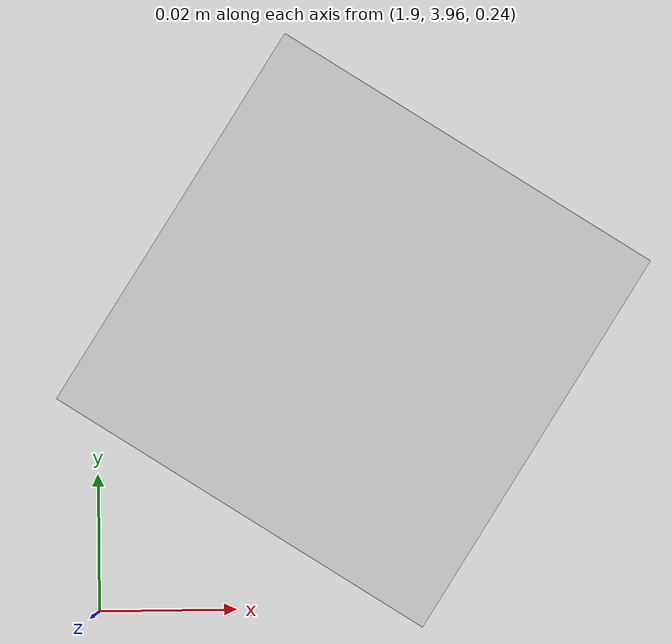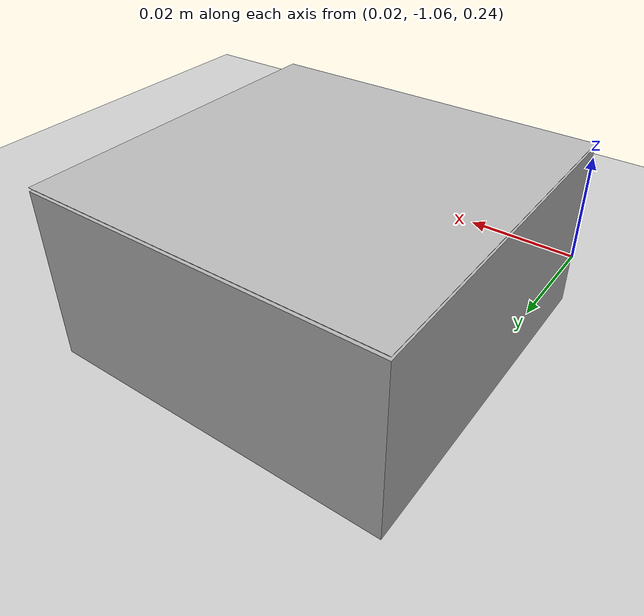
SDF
<sdf version='1.10'>
  <world name='empty'>
    <physics name='1ms' type='ignored'>
      <max_step_size>0.001</max_step_size>
      <real_time_factor>1</real_time_factor>
      <real_time_update_rate>1000</real_time_update_rate>
    </physics>
    <plugin name='gz::sim::systems::Physics' filename='gz-sim-physics-system'/>
    <plugin name='gz::sim::systems::UserCommands' filename='gz-sim-user-commands-system'/>
    <plugin name='gz::sim::systems::SceneBroadcaster' filename='gz-sim-scene-broadcaster-system'/>
    <plugin name='gz::sim::systems::Contact' filename='gz-sim-contact-system'/>
    <plugin name='gz::sim::systems::Sensors' filename='gz-sim-sensors-system'/>
    <plugin name='gz::sim::systems::Imu' filename='gz-sim-imu-system'/>
    <plugin name='gz::sim::systems::NavSat' filename='gz-sim-navsat-system'/>
    <spherical_coordinates>
      <surface_model>EARTH_WGS84</surface_model>
      <world_frame_orientation>ENU</world_frame_orientation>
      <latitude_deg>44.403373000000002</latitude_deg>
      <longitude_deg>8.9481067999999997</longitude_deg>
      <elevation>0</elevation>
      <heading_deg>0</heading_deg>
    </spherical_coordinates>
    <gravity>0 0 -9.8000000000000007</gravity>
    <magnetic_field>5.5644999999999998e-06 2.2875799999999999e-05 -4.2388400000000002e-05</magnetic_field>
    <atmosphere type='adiabatic'/>
    <scene>
      <ambient>0.400000006 0.400000006 0.400000006 1</ambient>
      <background>0.699999988 0.699999988 0.699999988 1</background>
      <shadows>true</shadows>
    </scene>
    <model name='ground_plane'>
      <static>true</static>
      <link name='link'>
        <collision name='collision'>
          <geometry>
            <plane>
              <normal>0 0 1</normal>
              <size>100 100</size>
            </plane>
          </geometry>
          <surface>
            <friction>
              <ode>
                <mu>50</mu>
              </ode>
            </friction>
            <bounce/>
            <contact/>
          </surface>
        </collision>
        <visual name='visual'>
          <geometry>
            <plane>
              <normal>0 0 1</normal>
              <size>100 100</size>
            </plane>
          </geometry>
          <material>
            <ambient>0.800000012 0.800000012 0.800000012 1</ambient>
            <diffuse>0.800000012 0.800000012 0.800000012 1</diffuse>
            <specular>0.800000012 0.800000012 0.800000012 1</specular>
          </material>
        </visual>
        <pose>0 0 0 0 0 0</pose>
        <inertial>
          <pose>0 0 0 0 0 0</pose>
          <mass>1</mass>
          <inertia>
            <ixx>1</ixx>
            <ixy>0</ixy>
            <ixz>0</ixz>
            <iyy>1</iyy>
            <iyz>0</iyz>
            <izz>1</izz>
          </inertia>
        </inertial>
        <enable_wind>false</enable_wind>
      </link>
      <pose>0 0 0 0 0 0</pose>
      <self_collide>false</self_collide>
    </model>
    <include>
      <uri>file:///home/utente/gazebo_models/aruco_box</uri>
      <name>aruco_box_2</name>
      <pose>3.54921 0.62242 0.25 0 -0 -1.8</pose>
    </include>
    <include>
      <uri>file:///home/utente/gazebo_models/aruco_box</uri>
      <name>aruco_box</name>
      <pose>-3.002 0.911545 0.25 -1.5708 -0 1.56726</pose>
    </include>
    <include>
      <uri>file:///home/utente/gazebo_models/aruco_box</uri>
      <name>aruco_box_1</name>
      <pose>1.93759 4 0.25 0 -0 1</pose>
    </include>
    <include>
      <uri>file:///home/utente/gazebo_models/aruco_box</uri>
      <name>aruco_box_2_1</name>
      <pose>-1.2 4 0.25 -0 -0 -1.1</pose>
    </include>
    <include>
      <uri>file:///home/utente/gazebo_models/aruco_box</uri>
      <name>aruco_box_2_2</name>
      <pose>0.04849 -1.02369 0.249999 0 -0 0</pose>
    </include>

    <light name='sun' type='directional'>
      <pose>0 0 10 0 0 0</pose>
      <cast_shadows>true</cast_shadows>
      <intensity>1</intensity>
      <direction>-0.5 0.10000000000000001 -0.90000000000000002</direction>
      <diffuse>0.800000012 0.800000012 0.800000012 1</diffuse>
      <specular>0.200000003 0.200000003 0.200000003 1</specular>
      <attenuation>
        <range>1000</range>
        <linear>0.0099999997764825821</linear>
        <constant>0.89999997615814209</constant>
        <quadratic>0.0010000000474974513</quadratic>
      </attenuation>
      <spot>
        <inner_angle>0</inner_angle>
        <outer_angle>0</outer_angle>
        <falloff>0</falloff>
      </spot>
    </light>
  </world>
</sdf>

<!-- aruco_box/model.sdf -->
<sdf version="1.6">
  <model name="aruco_box">
    <static>false</static>

    <link name="link">
      <inertial>
        <mass>0.05</mass>
        <inertia>
          <ixx>1e-5</ixx><iyy>1e-5</iyy><izz>1e-5</izz>
          <ixy>0</ixy><ixz>0</ixz><iyz>0</iyz>
        </inertia>
      </inertial>

      <collision name="box_col">
        <geometry>
          <box><size>0.06 0.06 0.03</size></box>
        </geometry>
      </collision>

      <visual name="box_vis">
        <geometry>
          <box><size>0.06 0.06 0.03</size></box>
        </geometry>
        <material>
          <ambient>0.7 0.7 0.7 1</ambient>
          <diffuse>0.7 0.7 0.7 1</diffuse>
        </material>
      </visual>

      <!-- Top marker plane -->
      <visual name="marker_plane">
        <!-- box half height = 0.015, lift slightly to avoid z-fighting -->
        <pose>0 0 0.0156 0 0 0</pose>
        <geometry>
          <plane>
            <normal>0 0 1</normal>
            <size>0.06 0.06</size>
          </plane>
        </geometry>
        <material>
          <script>
            <uri>model://aruco_box/materials/scripts</uri>
            <uri>model://aruco_box/materials/textures</uri>
            <name>ArucoBox/Marker</name>
          </script>
        </material>
      </visual>

    </link>
  </model>
</sdf>
